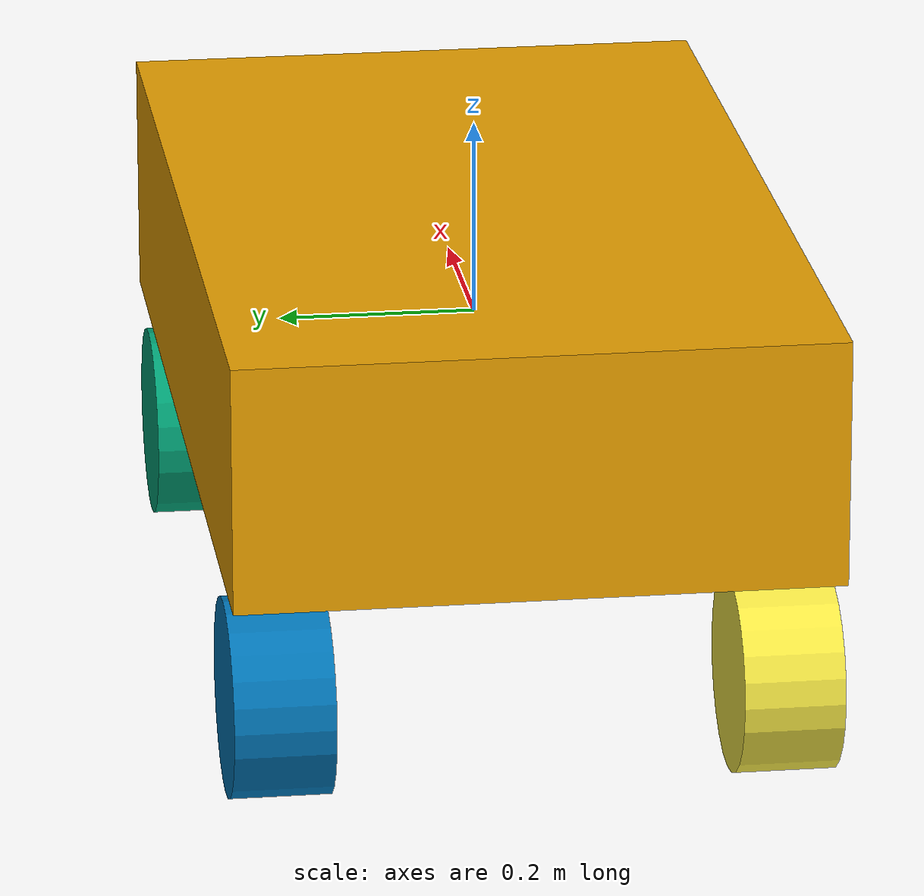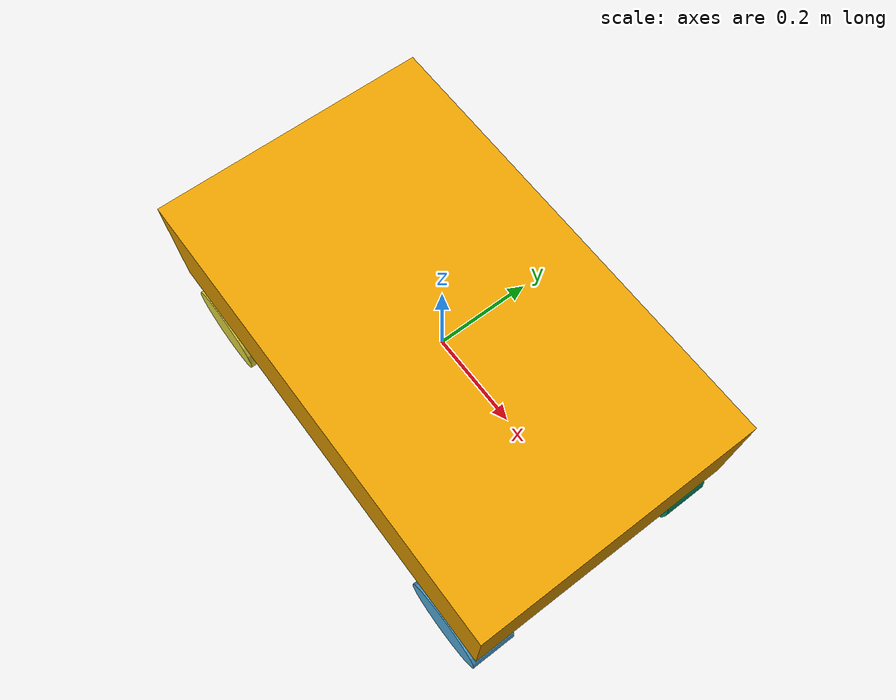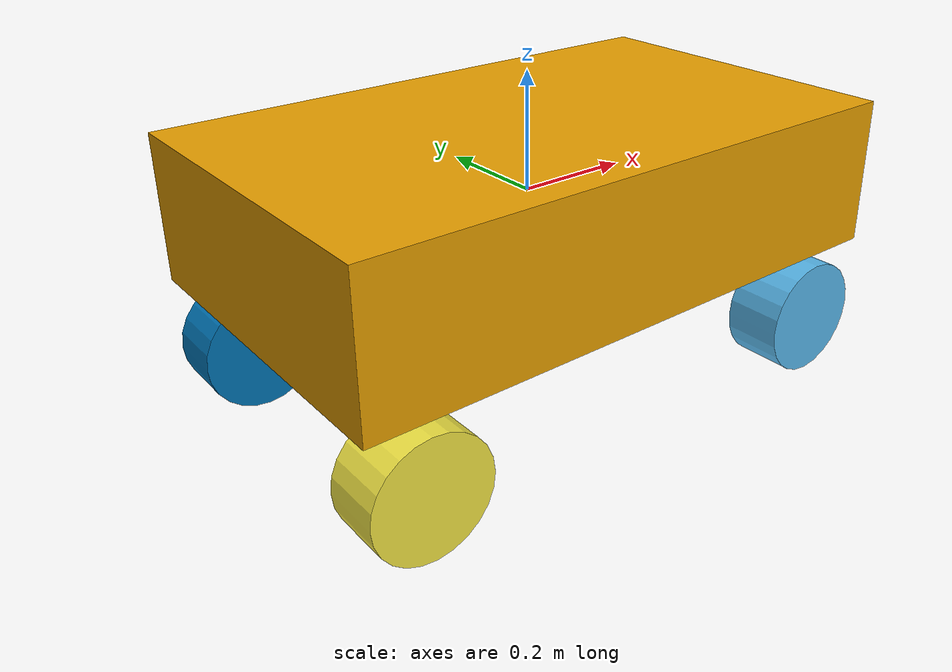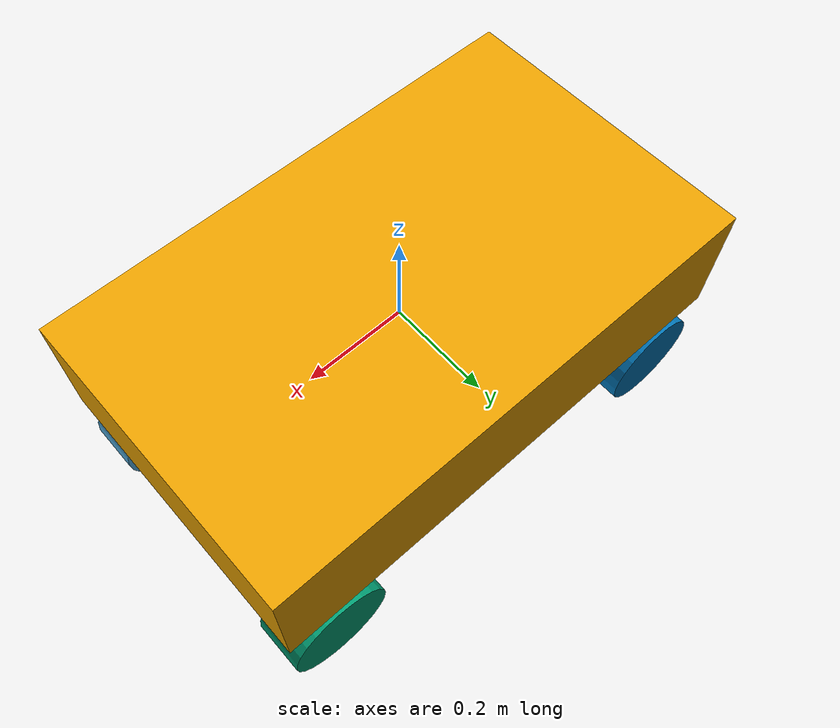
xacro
<?xml version="1.0"?>
<robot name="box"
    xmlns:xacro="http://www.ros.org/wiki/xacro">
    <xacro:include filename="$(find box_sim)/urdf/box.gazebo.xacro" />
    <xacro:include filename="$(find box_sim)/urdf/box.transmission.xacro" />
    <link name="base_link">
        <inertial>
            <origin xyz="0 0 0" rpy="0 0 0" />
            <mass value="4.83" />
            <inertia ixx="0" ixy="0" ixz="0" iyy="0" iyz="0" izz="0" />
        </inertial>
        <visual>
            <origin xyz="0 0 0" rpy="0 0 0" />
            <geometry>
                <box size="1 0.6 0.25" />
            </geometry>
        </visual>
        <collision>
            <origin xyz="0 0 0" rpy="0 0 0" />
            <geometry>
                <box size="1 0.6 0.25" />
            </geometry>
        </collision>
    </link>
    <link name="right_steer_wheel_link">
        <inertial>
            <origin xyz="0 0 0" rpy="0 0 0" />
            <mass value="0.9" />
            <inertia ixx="0" ixy="0" ixz="0" iyy="0" iyz="0" izz="0" />
        </inertial>
        <visual>
            <origin xyz="0 0 0" rpy="0 0 0" />
            <geometry>
                <cylinder length="0.1"  radius="0.1" />
            </geometry>
        </visual>
        <collision>
            <origin xyz="0 0 0" rpy="0 0 0" />
            <geometry>
                <cylinder length="0.1"  radius="0.1" />
            </geometry>
        </collision>
    </link>
    <joint name="right_steer_wheel_joint" type="continuous">
        <origin xyz="0.40 -0.25 -0.25" rpy="0 1.5709 1.5709" />
        <parent link="base_link" />
        <child link="right_steer_wheel_link" />
        <axis xyz = "0 0 1"/>
    </joint>
    <link name="left_steer_wheel_link">
        <inertial>
            <origin xyz="0 0 0" rpy="0 0 0" />
            <mass value="0.9" />
            <inertia ixx="0" ixy="0" ixz="0" iyy="0" iyz="0" izz="0" />
        </inertial>
        <visual>
            <origin xyz="0 0 0" rpy="0 0 0" />
            <geometry>
                <cylinder length="0.1"  radius="0.1" />
            </geometry>
        </visual>
        <collision>
            <origin xyz="0 0 0" rpy="0 0 0" />
            <geometry>
                <cylinder length="0.1"  radius="0.1" />
            </geometry>
        </collision>
    </link>
    <joint name="left_steer_wheel_joint" type="continuous">
        <origin xyz="0.40 0.25 -0.25" rpy="0 1.5709 1.5709" />
        <parent link="base_link" />
        <child link="left_steer_wheel_link" />
        <axis xyz = "0 0 1"/>
    </joint>
    <link name="right_drive_wheel_link">
        <inertial>
            <origin xyz="0 0 0" rpy="0 0 0" />
            <mass value="0.9" />
            <inertia ixx="0" ixy="0" ixz="0" iyy="0" iyz="0" izz="0" />
        </inertial>
        <visual>
            <origin xyz="0 0 0" rpy="0 0 0" />
            <geometry>
                <cylinder length="0.1"  radius="0.1" />
            </geometry>
        </visual>
        <collision>
            <origin xyz="0 0 0" rpy="0 0 0" />
            <geometry>
                <cylinder length="0.1"  radius="0.1" />
            </geometry>
        </collision>
    </link>
    <joint name="right_drive_wheel_joint" type="continuous">
        <origin xyz="-0.40 -0.25 -0.25" rpy="0 1.5709 1.5709" />
        <parent link="base_link" />
        <child link="right_drive_wheel_link" />
        <axis xyz = "0 0 1"/>
    </joint>
    <link name="left_drive_wheel_link">
        <inertial>
            <origin xyz="0 0 0" rpy="0 0 0" />
            <mass value="0.9" />
            <inertia ixx="0" ixy="0" ixz="0" iyy="0" iyz="0" izz="0" />
        </inertial>
        <visual>
            <origin xyz="0 0 0" rpy="0 0 0" />
            <geometry>
                <cylinder length="0.1"  radius="0.1" />
            </geometry>
        </visual>
        <collision>
            <origin xyz="0 0 0" rpy="0 0 0" />
            <geometry>
                <cylinder length="0.1"  radius="0.1" />
            </geometry>
        </collision>
    </link>
    <joint name="left_drive_wheel_joint" type="continuous">
        <origin xyz="-0.40 0.25 -0.25" rpy="0 1.5709 1.5709" />
        <parent link="base_link" />
        <child link="left_drive_wheel_link" />
        <axis xyz = "0 0 1"/>
    </joint>
    <link name="right_steer_link">
        <inertial>
            <origin xyz="0 0 0" rpy="0 0 0" />
            <mass value="0.1" />
            <inertia ixx="0" ixy="0" ixz="0" iyy="0" iyz="0" izz="0" />
        </inertial>
    </link>
    <joint name="right_steer_joint" type="revolute">
        <origin xyz="0.40 -0.25 -0.10" rpy="0 1.5709 1.5709" />
        <parent link="base_link" />
        <child link="right_steer_link" />
        <axis xyz = "-1 0 0"/>
        <dynamics damping="0.7" friction="0.7"/>
        <limit effort="7.0" lower="-0.52" upper="0.52" velocity="${200.0*pi/180.0*0.95}"/>
    </joint>
    <link name="left_steer_link">
        <inertial>
            <origin xyz="0 0 0" rpy="0 0 0" />
            <mass value="0.9" />
            <inertia ixx="0" ixy="0" ixz="0" iyy="0" iyz="0" izz="0" />
        </inertial>
    </link>
    <joint name="left_steer_joint" type="revolute">
        <origin xyz="0.40 0.25 -0.10" rpy="0 1.5709 1.5709" />
        <parent link="base_link" />
        <child link="left_steer_link" />
        <dynamics damping="0.7" friction="0.7"/>
        <limit effort="7.0" lower="-0.52" upper="0.52" velocity="${200.0*pi/180.0*0.95}"/>
        <axis xyz = "-1 0 0"/>
    </joint>
    <link name="fake_steer_link">
        <inertial>
            <origin xyz="0 0 0" rpy="0 0 0" />
            <mass value="0.9" />
            <inertia ixx="0" ixy="0" ixz="0" iyy="0" iyz="0" izz="0" />
        </inertial>
    </link>
    <joint name="fake_steer_joint" type="revolute">
        <origin xyz="0.40 0 -0.10" rpy="0 1.5709 1.5709" />
        <parent link="base_link" />
        <child link="fake_steer_link" />
        <dynamics damping="0.7" friction="0.7"/>
        <limit effort="7.0" lower="-0.52" upper="0.52" velocity="${200.0*pi/180.0*0.95}"/>
        <axis xyz = "-1 0 0"/>
    </joint>
    <link name="fake_drive_link">
        <inertial>
            <origin xyz="0 0 0" rpy="0 0 0" />
            <mass value="0.9" />
            <inertia ixx="0" ixy="0" ixz="0" iyy="0" iyz="0" izz="0" />
        </inertial>
    </link>
    <joint name="fake_drive_joint" type="continuous">
        <origin xyz="-0.40 0 -0.25" rpy="0 1.5709 1.5709" />
        <parent link="base_link" />
        <child link="fake_drive_link" />
        <axis xyz = "0 0 1"/>
    </joint>
</robot>
